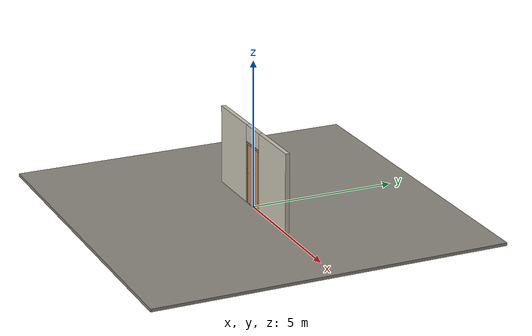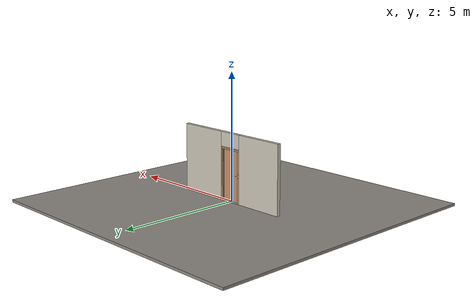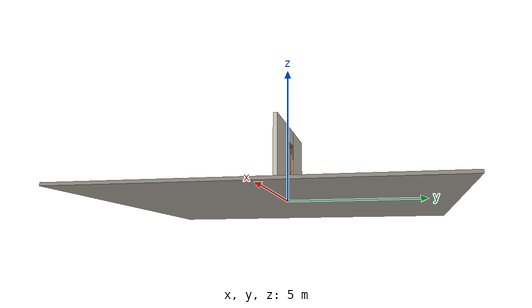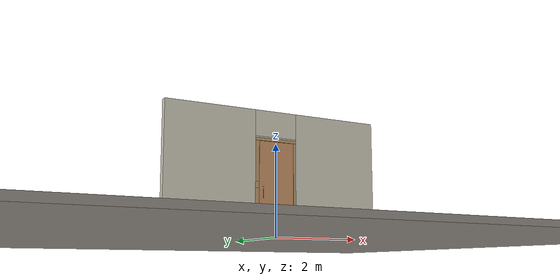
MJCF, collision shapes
<?xml version="1.0" ?>
<mujoco model="db0576_swing_single_minimal">
  <compiler angle="radian" meshdir="../../hardware" texturedir="../../textures" autolimits="true" inertiafromgeom="false"/>
  <option timestep="0.002" integrator="implicitfast" cone="elliptic" impratio="10" noslip_iterations="3">
    <flag multiccd="enable"/>
  </option>
  <size memory="16M"/>
  <default>
    <geom condim="4" solref="0.005 1" solimp="0.95 0.99 0.001"/>
    <joint solreflimit="0.005 1" solimplimit="0.95 0.99 0.001"/>
    <tendon solreflimit="0.005 1"/>
    <equality solref="0.002 1"/>
  </default>
  <visual>
    <headlight ambient="0.4 0.4 0.4" diffuse="0.7 0.7 0.7" specular="0.2 0.2 0.2"/>
    <quality shadowsize="4096"/>
    <map znear="0.01" zfar="60"/>
  </visual>
  <asset>
    <mesh name="thumb_latch_0073ea78ed" file="thumb_latch_0073ea78ed.obj"/>
    <material name="mat_floor" rgba="0.55 0.53 0.5 1" specular="0.2" shininess="0.15" reflectance="0"/>
    <material name="mat_wall" rgba="0.78 0.76 0.7 1" specular="0.2" shininess="0.1" reflectance="0"/>
    <material name="mat_leaf" rgba="0.75 0.55 0.38 1" specular="0.2" shininess="0.45" reflectance="0"/>
    <material name="mat_leaf_panel" rgba="0.69 0.506 0.35 1" specular="0.2" shininess="0.45" reflectance="0"/>
    <material name="mat_button" rgba="0.7 0.6 0.3 1" specular="0.8" shininess="0.7" reflectance="0.4"/>
    <material name="mat_hinge" rgba="0.65 0.66 0.68 1" specular="0.74" shininess="0.5" reflectance="0.36"/>
    <material name="mat_op_wrought_iron" rgba="0.08 0.08 0.09 1" specular="0.56" shininess="0.25" reflectance="0.24"/>
    <material name="mat_frame" rgba="0.7 0.58 0.42 1" specular="0.2" shininess="0.5" reflectance="0"/>
    <material name="mat_threshold" rgba="0.8 0.81 0.83 1" specular="0.8" shininess="0.6" reflectance="0.4"/>
    <material name="mat_wreath" rgba="0.12 0.3 0.12 1" specular="0.2" shininess="0.05" reflectance="0"/>
    <material name="mat_wreath_hook" rgba="0.85 0.66 0.3 1" specular="0.8" shininess="0.75" reflectance="0.4"/>
    <texture name="skybox" type="skybox" builtin="gradient" rgb1="0.6 0.7 0.85" rgb2="0.9 0.92 0.95" width="256" height="256"/>
  </asset>
  <worldbody>
    <light name="sun" pos="1.5 -2.5 4" dir="-0.3 0.5 -0.8" directional="true" diffuse="0.8 0.8 0.8" specular="0.3 0.3 0.3" castshadow="true"/>
    <light name="fill" pos="-1.5 2.5 3" dir="0.3 -0.5 -0.7" directional="true" diffuse="0.35 0.35 0.4" castshadow="false"/>
    <camera name="robot_view" pos="0 -2.501687 1.734312" xyaxes="1 0 0 0 0.26963 0.962964" fovy="52"/>
    <camera name="far_view" pos="0 2.582688 1.734312" xyaxes="-1 0 0 0 -0.26963 0.962964" fovy="52"/>
    <camera name="iso" pos="-1.932062 -2.094937 2.141063" xyaxes="0.741536 -0.670913 0 0.242917 0.268487 0.932151" fovy="46"/>
    <camera name="detail_handle" pos="-0.1455 -0.86 1.195" xyaxes="0.97561 0.219512 0 -0.070934 0.315262 0.94635" fovy="38"/>
    <geom name="floor" type="box" size="6 6 0.05" pos="0 0 -0.05" material="mat_floor" group="0" contype="1" conaffinity="1" friction="0.8 0.005 0.0001" density="2400"/>
    <geom name="wall_left" type="box" size="0.99975 0.0725 1.35" pos="-1.50025 0.0405 1.35" material="mat_wall" group="0" contype="1" conaffinity="1" friction="0.6 0.005 0.0001" density="800"/>
    <geom name="wall_right" type="box" size="1.01475 0.0725 1.35" pos="1.48525 0.0405 1.35" material="mat_wall" group="0" contype="1" conaffinity="1" friction="0.6 0.005 0.0001" density="800"/>
    <geom name="wall_header" type="box" size="0.4855 0.0725 0.2825" pos="-0.015 0.0405 2.4175" material="mat_wall" group="0" contype="1" conaffinity="1" friction="0.6 0.005 0.0001" density="800"/>
    <geom name="jamb_hinge" type="box" size="0.03 0.0725 1.0225" pos="0.4405 0.0405 1.0225" material="mat_frame" group="0" contype="1" conaffinity="1" friction="0.6 0.005 0.0001" density="750"/>
    <geom name="strike_1100_wall_n" type="box" size="0.045 0.033 0.07" pos="-0.4555 0.08 1.1" material="mat_frame" group="0" contype="1" conaffinity="1" friction="0.6 0.005 0.0001" density="750"/>
    <geom name="strike_1100_wall_p" type="box" size="0.045 0.0295 0.07" pos="-0.4555 -0.0025 1.1" material="mat_frame" group="0" contype="1" conaffinity="1" friction="0.6 0.005 0.0001" density="750"/>
    <geom name="strike_1100_back" type="box" size="0.035 0.01 0.07" pos="-0.4655 0.037 1.1" material="mat_frame" group="0" contype="1" conaffinity="1" friction="0.6 0.005 0.0001" density="750"/>
    <geom name="jamb_strike_0" type="box" size="0.045 0.0725 0.515" pos="-0.4555 0.0405 0.515" material="mat_frame" group="0" contype="1" conaffinity="1" friction="0.6 0.005 0.0001" density="750"/>
    <geom name="jamb_strike_1" type="box" size="0.045 0.0725 0.4375" pos="-0.4555 0.0405 1.6075" material="mat_frame" group="0" contype="1" conaffinity="1" friction="0.6 0.005 0.0001" density="750"/>
    <geom name="jamb_head" type="box" size="0.4855 0.0725 0.03" pos="-0.015 0.0405 2.075" material="mat_frame" group="0" contype="1" conaffinity="1" friction="0.6 0.005 0.0001" density="750"/>
    <geom name="head_stud" type="box" size="0.4855 0.0725 0.015" pos="-0.015 0.0405 2.12" material="mat_wall" group="0" contype="1" conaffinity="1" friction="0.6 0.005 0.0001" density="500"/>
    <geom name="stop_hinge" type="box" size="0.0055 0.016 1.0225" pos="0.405 0.0415 1.0225" material="mat_frame" group="0" contype="1" conaffinity="1" friction="0.6 0.005 0.0001" density="750"/>
    <geom name="stop_strike" type="box" size="0.0055 0.016 0.509" pos="-0.405 0.0415 0.509" material="mat_frame" group="0" contype="1" conaffinity="1" friction="0.6 0.005 0.0001" density="750"/>
    <geom name="stop_strike_1" type="box" size="0.0055 0.016 0.4315" pos="-0.405 0.0415 1.6135" material="mat_frame" group="0" contype="1" conaffinity="1" friction="0.6 0.005 0.0001" density="750"/>
    <geom name="stop_head" type="box" size="0.4105 0.016 0.0055" pos="0 0.0415 2.0395" material="mat_frame" group="0" contype="1" conaffinity="1" friction="0.6 0.005 0.0001" density="750"/>
    <geom name="threshold" type="box" size="0.4705 0.0725 0.0065" pos="0 0.0405 0.0065" material="mat_threshold" group="0" contype="1" conaffinity="1" friction="0.5 0.005 0.0001" density="2700"/>
    <site name="approach_point" pos="0 -1.5 0" quat="1 0 0 0" size="0.05" rgba="0.2 0.9 0.2 0.5" group="4"/>
    <site name="goal_point" pos="0 1.5 0" quat="1 0 0 0" size="0.05" rgba="0.2 0.9 0.2 0.5" group="4"/>
    <site name="door_plane_center" pos="0 0 1.0225" quat="1 0 0 0" size="0.02" rgba="0.2 0.9 0.2 0.5" group="4"/>
    <body name="leaf" pos="0.4105 0 0">
      <inertial pos="-0.415576 -0.000835 1.026878" mass="43.665256" quat="0.500657 0.498122 0.501737 -0.499477" diaginertia="2.456078598 14.654059432 17.088808015"/>
      <joint name="leaf_hinge" type="hinge" axis="0 0 1" pos="-0.003 -0.032 0" limited="true" range="0 2.443461" damping="0.210326" frictionloss="3.794658" armature="0.02"/>
      <geom name="leaf_slab" type="box" size="0.4065 0.025 1.012" pos="-0.4095 0 1.029" material="mat_leaf" group="0" contype="1" conaffinity="1" friction="0.35 0.005 0.0001" density="1"/>
      <geom name="leaf_suffolk_grip" type="mesh" mesh="thumb_latch_0073ea78ed" pos="-0.736 -0.025 0.915" quat="0 0 -0.707107 0.707107" material="mat_op_wrought_iron" group="1" contype="0" conaffinity="0" density="7000"/>
      <geom name="leaf_suffolk_grip_col" type="capsule" size="0.008 0.09" pos="-0.736 -0.06 0.915" material="mat_op_wrought_iron" group="3" contype="1" conaffinity="1" rgba="0.8 0.3 0.3 0.25" friction="0.7 0.01 0.0001" density="7000"/>
      <site name="leaf_grip_n" pos="-0.736 -0.06 0.915" quat="1 0 0 0" size="0.012" rgba="0.2 0.9 0.2 0.5" group="4"/>
      <site name="leaf_edge_mid" pos="-0.816 0 1.012" quat="1 0 0 0" size="0.02" rgba="0.2 0.9 0.2 0.5" group="4"/>
      <body name="leaf_thumb" pos="-0.736 -0.025 1.06">
        <inertial pos="0 -0.02 0" mass="0.03528" quat="1 0 0 0" diaginertia="0.000002411 0.000002752 0.000004951"/>
        <joint name="leaf_thumb_hinge" type="hinge" axis="1 0 0" limited="true" range="0 0.3" damping="0.15542" frictionloss="0.032" stiffness="0.6" springref="-0.5" armature="0.01"/>
        <geom name="leaf_thumb_geom" type="box" size="0.015 0.014 0.003" pos="0 -0.02 0" material="mat_op_wrought_iron" group="0" contype="1" conaffinity="1" friction="0.6 0.005 0.0001" density="7000"/>
        <site name="leaf_thumb_push" pos="0 -0.024 0.005" quat="1 0 0 0" size="0.01" rgba="0.2 0.9 0.2 0.5" group="4"/>
      </body>
      <body name="leaf_latch_bar" pos="-0.616 0.037 1.055">
        <inertial pos="-0.106 0 0" mass="0.25" quat="0 0 -0.707107 0.707107" diaginertia="0.000004465 0.000904065 0.000904065"/>
        <joint name="leaf_latch_bar_hinge" type="hinge" axis="0 1 0" limited="true" range="0 0.6" damping="0.01" frictionloss="0.01" armature="0.005"/>
        <geom name="leaf_latch_bar_geom" type="capsule" size="0.006 0.1" pos="-0.106 0 0" quat="0.707107 0 -0.707107 0" material="mat_op_wrought_iron" group="0" contype="1" conaffinity="1" friction="0.6 0.005 0.0001" density="7850"/>
      </body>
    </body>
  </worldbody>
  <equality>
    <joint name="leaf_thumb_couple" joint1="leaf_latch_bar_hinge" joint2="leaf_thumb_hinge" polycoef="0 2 0 0 0" active="true"/>
  </equality>
  <sensor>
    <jointpos name="leaf_hinge_pos" joint="leaf_hinge"/>
    <jointvel name="leaf_hinge_vel" joint="leaf_hinge"/>
    <jointpos name="leaf_thumb_hinge_pos" joint="leaf_thumb_hinge"/>
    <jointvel name="leaf_thumb_hinge_vel" joint="leaf_thumb_hinge"/>
    <jointpos name="leaf_latch_bar_hinge_pos" joint="leaf_latch_bar_hinge"/>
    <jointvel name="leaf_latch_bar_hinge_vel" joint="leaf_latch_bar_hinge"/>
  </sensor>
</mujoco>
